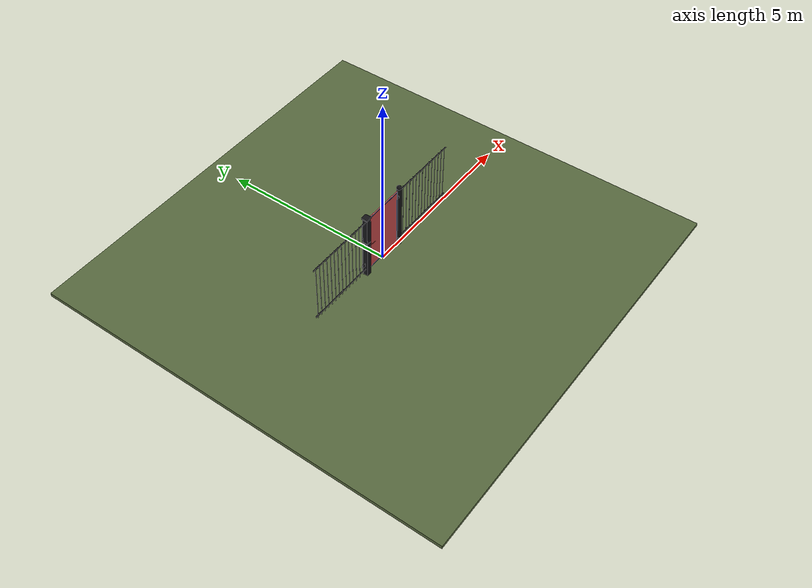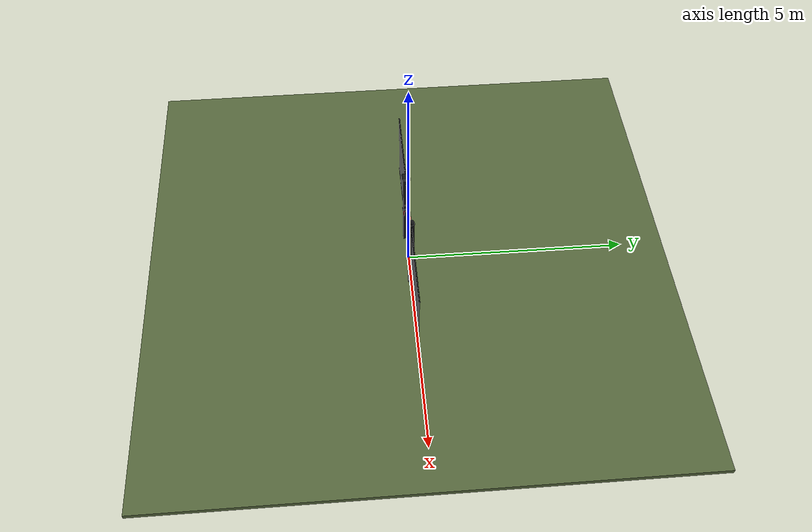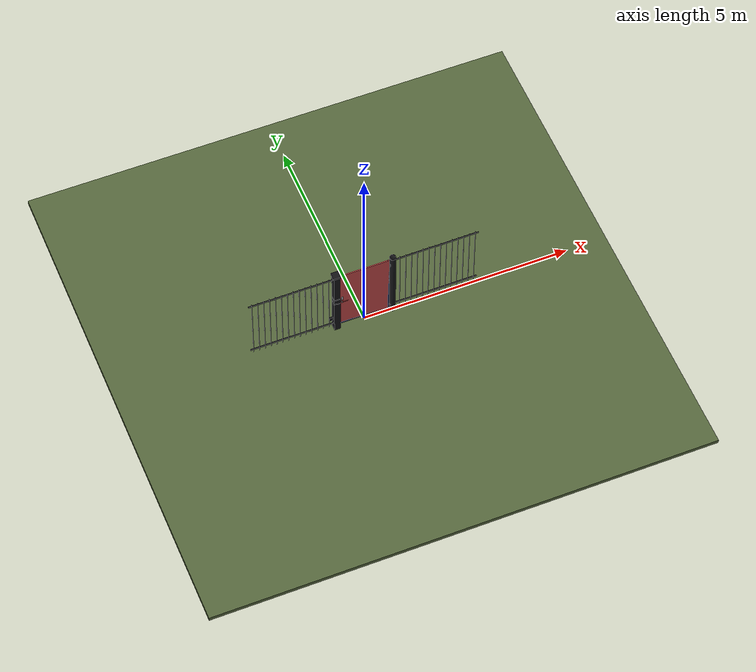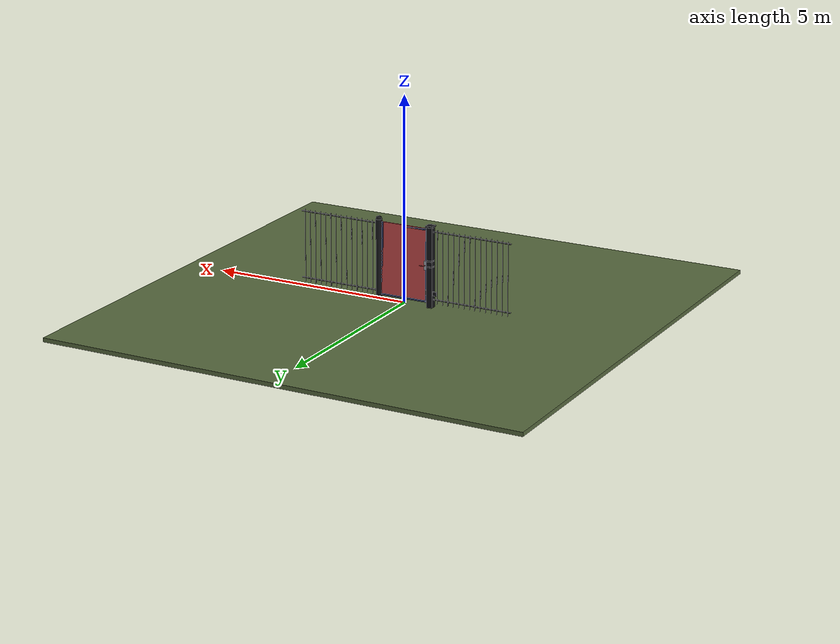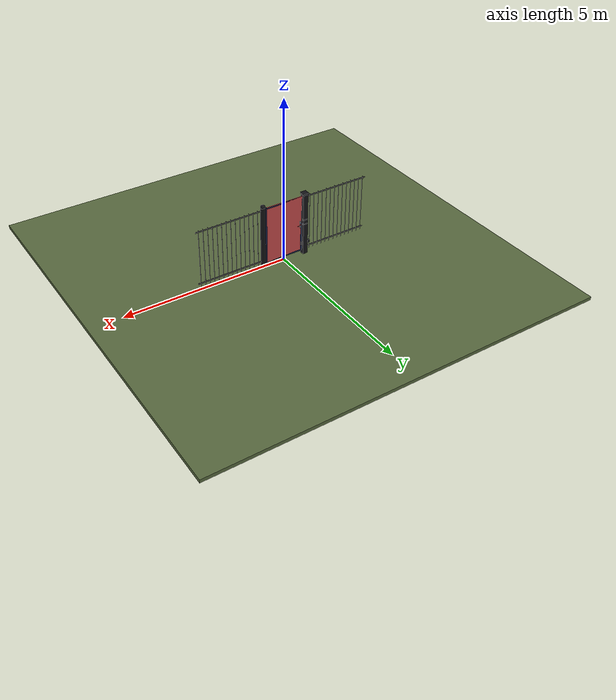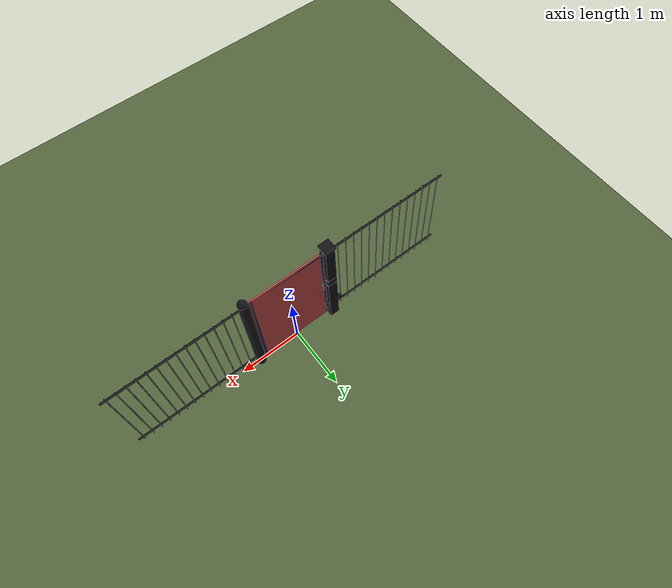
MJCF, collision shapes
<?xml version="1.0" ?>
<mujoco model="db0709_gate_swing_full">
  <compiler angle="radian" meshdir="../../hardware" texturedir="../../textures" autolimits="true" inertiafromgeom="false"/>
  <option timestep="0.002" integrator="implicitfast" cone="elliptic" impratio="10" noslip_iterations="3">
    <flag multiccd="enable"/>
  </option>
  <size memory="16M"/>
  <default>
    <geom condim="4" solref="0.005 1" solimp="0.95 0.99 0.001"/>
    <joint solreflimit="0.005 1" solimplimit="0.95 0.99 0.001"/>
    <tendon solreflimit="0.005 1"/>
    <equality solref="0.002 1"/>
  </default>
  <visual>
    <headlight ambient="0.4 0.4 0.4" diffuse="0.7 0.7 0.7" specular="0.2 0.2 0.2"/>
    <quality shadowsize="4096"/>
    <map znear="0.01" zfar="60"/>
  </visual>
  <asset>
    <mesh name="cyl_face_e9e5036966" file="cyl_face_e9e5036966.obj"/>
    <mesh name="lever_f913fc5b7b" file="lever_f913fc5b7b.obj"/>
    <mesh name="strap_hinge_118b895b75" file="strap_hinge_118b895b75.obj"/>
    <material name="mat_floor" rgba="0.35 0.42 0.25 1" specular="0.2" shininess="0.15" reflectance="0"/>
    <material name="mat_wall" rgba="0.78 0.76 0.7 1" specular="0.2" shininess="0.1" reflectance="0"/>
    <material name="mat_leaf" rgba="0.09 0.13 0.28 1" specular="0.23" shininess="0.31" reflectance="0.02"/>
    <material name="mat_hinge" rgba="0.65 0.66 0.68 1" specular="0.74" shininess="0.5" reflectance="0.36"/>
    <material name="mat_op_stainless" rgba="0.75 0.76 0.77 1" specular="0.8" shininess="0.65" reflectance="0.4"/>
    <material name="mat_trim" rgba="0.85 0.66 0.3 1" specular="0.8" shininess="0.75" reflectance="0.4"/>
    <material name="mat_bolt" rgba="0.75 0.76 0.77 1" specular="0.8" shininess="0.65" reflectance="0.4"/>
    <material name="mat_deadbolt" rgba="0.85 0.66 0.3 1" specular="0.8" shininess="0.75" reflectance="0.4"/>
    <material name="mat_frame" rgba="0.08 0.08 0.09 1" specular="0.56" shininess="0.25" reflectance="0.24"/>
    <texture name="skybox" type="skybox" builtin="gradient" rgb1="0.6 0.7 0.85" rgb2="0.9 0.92 0.95" width="256" height="256"/>
  </asset>
  <worldbody>
    <light name="sun" pos="1.5 -2.5 4" dir="-0.3 0.5 -0.8" directional="true" diffuse="0.8 0.8 0.8" specular="0.3 0.3 0.3" castshadow="true"/>
    <light name="fill" pos="-1.5 2.5 3" dir="0.3 -0.5 -0.7" directional="true" diffuse="0.35 0.35 0.4" castshadow="false"/>
    <camera name="robot_view" pos="0 -2.33125 1.56275" xyaxes="1 0 0 0 0.26963 0.962964" fovy="52"/>
    <camera name="far_view" pos="0 2.33125 1.56275" xyaxes="-1 0 0 0 -0.26963 0.962964" fovy="52"/>
    <camera name="iso" pos="-1.77175 -1.95825 1.93575" xyaxes="0.741536 -0.670913 0 0.242917 0.268487 0.932151" fovy="46"/>
    <camera name="detail_handle" pos="-0.258 -0.8675 1.28" xyaxes="0.97561 0.219512 0 -0.070934 0.315262 0.94635" fovy="38"/>
    <geom name="floor" type="box" size="6 6 0.05" pos="0 0 -0.05" material="mat_floor" group="0" contype="1" conaffinity="1" friction="0.8 0.005 0.0001" density="2400"/>
    <geom name="hinge_pintle_0" type="cylinder" size="0.008 0.02" pos="0.603 -0.05 0.224" material="mat_hinge" group="1" contype="0" conaffinity="0" density="7850"/>
    <geom name="hinge_pintle_1" type="cylinder" size="0.008 0.02" pos="0.603 -0.05 1.724" material="mat_hinge" group="1" contype="0" conaffinity="0" density="7850"/>
    <geom name="leaf_deadbolt_strike_b" type="box" size="0.0155 0.003 0.0005" pos="-0.6055 0 1.1215" quat="0.5 0.5 0.5 0.5" material="mat_deadbolt" group="1" contype="0" conaffinity="0" density="7800"/>
    <geom name="leaf_deadbolt_strike_l" type="box" size="0.003 0.0155 0.0005" pos="-0.6055 -0.0125 1.14" quat="0.5 0.5 0.5 0.5" material="mat_deadbolt" group="1" contype="0" conaffinity="0" density="7800"/>
    <geom name="leaf_deadbolt_strike_t" type="box" size="0.0155 0.003 0.0005" pos="-0.6055 0 1.1585" quat="0.5 0.5 0.5 0.5" material="mat_deadbolt" group="1" contype="0" conaffinity="0" density="7800"/>
    <geom name="leaf_deadbolt_strike_r" type="box" size="0.003 0.0155 0.0005" pos="-0.6055 0.0125 1.14" quat="0.5 0.5 0.5 0.5" material="mat_deadbolt" group="1" contype="0" conaffinity="0" density="7800"/>
    <geom name="post_hinge" type="cylinder" size="0.075 0.975" pos="0.681 0 0.975" material="mat_frame" group="0" contype="1" conaffinity="1" friction="0.6 0.005 0.0001" density="800"/>
    <geom name="post_hinge_cap" type="sphere" size="0.075" pos="0.681 0 1.95" material="mat_frame" group="1" contype="0" conaffinity="0" density="800"/>
    <geom name="post_1000_wall_n" type="box" size="0.075 0.03425 0.015" pos="-0.681 0.04075 1" material="mat_frame" group="0" contype="1" conaffinity="1" friction="0.6 0.005 0.0001" density="800"/>
    <geom name="post_1000_wall_p" type="box" size="0.075 0.008 0.015" pos="-0.681 -0.0145 1" material="mat_frame" group="0" contype="1" conaffinity="1" friction="0.6 0.005 0.0001" density="800"/>
    <geom name="post_1000_ramp" type="box" size="0.075 0.037018 0.015" pos="-0.686945 -0.043555 1" quat="0.994802 0 0 -0.101832" material="mat_frame" group="0" contype="1" conaffinity="1" friction="0.12 0.005 0.0001" density="800"/>
    <geom name="post_1000_back" type="box" size="0.066 0.0065 0.015" pos="-0.69 0 1" material="mat_frame" group="0" contype="1" conaffinity="1" friction="0.6 0.005 0.0001" density="800"/>
    <geom name="post_1140_wall_n" type="box" size="0.075 0.03275 0.0155" pos="-0.681 0.04225 1.14" material="mat_frame" group="0" contype="1" conaffinity="1" friction="0.6 0.005 0.0001" density="800"/>
    <geom name="post_1140_wall_p" type="box" size="0.075 0.03275 0.0155" pos="-0.681 -0.04225 1.14" material="mat_frame" group="0" contype="1" conaffinity="1" friction="0.6 0.005 0.0001" density="800"/>
    <geom name="post_1140_back" type="box" size="0.0603 0.0095 0.0155" pos="-0.6957 0 1.14" material="mat_frame" group="0" contype="1" conaffinity="1" friction="0.6 0.005 0.0001" density="800"/>
    <geom name="post_latch_0" type="box" size="0.075 0.075 0.4925" pos="-0.681 0 0.4925" material="mat_frame" group="0" contype="1" conaffinity="1" friction="0.6 0.005 0.0001" density="800"/>
    <geom name="post_latch_1" type="box" size="0.075 0.075 0.05475" pos="-0.681 0 1.06975" material="mat_frame" group="0" contype="1" conaffinity="1" friction="0.6 0.005 0.0001" density="800"/>
    <geom name="post_latch_2" type="box" size="0.075 0.075 0.39725" pos="-0.681 0 1.55275" material="mat_frame" group="0" contype="1" conaffinity="1" friction="0.6 0.005 0.0001" density="800"/>
    <geom name="post_latch_cap" type="box" size="0.09 0.09 0.02" pos="-0.681 0 1.97" material="mat_frame" group="1" contype="0" conaffinity="0" density="800"/>
    <geom name="gate_stop" type="box" size="0.02 0.012 0.06" pos="-0.586 0.0245 0.35" material="mat_frame" group="0" contype="1" conaffinity="1" friction="0.6 0.005 0.0001" density="800"/>
    <geom name="fence_bar_l_0" type="cylinder" size="0.008 0.9" pos="-0.856 0 1" material="mat_frame" group="0" contype="1" conaffinity="1" friction="0.6 0.005 0.0001" density="7850"/>
    <geom name="fence_bar_l_1" type="cylinder" size="0.008 0.9" pos="-0.996 0 1" material="mat_frame" group="0" contype="1" conaffinity="1" friction="0.6 0.005 0.0001" density="7850"/>
    <geom name="fence_bar_l_2" type="cylinder" size="0.008 0.9" pos="-1.136 0 1" material="mat_frame" group="0" contype="1" conaffinity="1" friction="0.6 0.005 0.0001" density="7850"/>
    <geom name="fence_bar_l_3" type="cylinder" size="0.008 0.9" pos="-1.276 0 1" material="mat_frame" group="0" contype="1" conaffinity="1" friction="0.6 0.005 0.0001" density="7850"/>
    <geom name="fence_bar_l_4" type="cylinder" size="0.008 0.9" pos="-1.416 0 1" material="mat_frame" group="0" contype="1" conaffinity="1" friction="0.6 0.005 0.0001" density="7850"/>
    <geom name="fence_bar_l_5" type="cylinder" size="0.008 0.9" pos="-1.556 0 1" material="mat_frame" group="0" contype="1" conaffinity="1" friction="0.6 0.005 0.0001" density="7850"/>
    <geom name="fence_bar_l_6" type="cylinder" size="0.008 0.9" pos="-1.696 0 1" material="mat_frame" group="0" contype="1" conaffinity="1" friction="0.6 0.005 0.0001" density="7850"/>
    <geom name="fence_bar_l_7" type="cylinder" size="0.008 0.9" pos="-1.836 0 1" material="mat_frame" group="0" contype="1" conaffinity="1" friction="0.6 0.005 0.0001" density="7850"/>
    <geom name="fence_bar_l_8" type="cylinder" size="0.008 0.9" pos="-1.976 0 1" material="mat_frame" group="0" contype="1" conaffinity="1" friction="0.6 0.005 0.0001" density="7850"/>
    <geom name="fence_bar_l_9" type="cylinder" size="0.008 0.9" pos="-2.116 0 1" material="mat_frame" group="0" contype="1" conaffinity="1" friction="0.6 0.005 0.0001" density="7850"/>
    <geom name="fence_bar_l_10" type="cylinder" size="0.008 0.9" pos="-2.256 0 1" material="mat_frame" group="0" contype="1" conaffinity="1" friction="0.6 0.005 0.0001" density="7850"/>
    <geom name="fence_bar_l_11" type="cylinder" size="0.008 0.9" pos="-2.396 0 1" material="mat_frame" group="0" contype="1" conaffinity="1" friction="0.6 0.005 0.0001" density="7850"/>
    <geom name="fence_bar_l_12" type="cylinder" size="0.008 0.9" pos="-2.536 0 1" material="mat_frame" group="0" contype="1" conaffinity="1" friction="0.6 0.005 0.0001" density="7850"/>
    <geom name="fence_bar_l_13" type="cylinder" size="0.008 0.9" pos="-2.676 0 1" material="mat_frame" group="0" contype="1" conaffinity="1" friction="0.6 0.005 0.0001" density="7850"/>
    <geom name="fence_rail_l" type="box" size="1 0.012 0.012" pos="-1.756 0 1.85" material="mat_frame" group="0" contype="1" conaffinity="1" friction="0.6 0.005 0.0001" density="7850"/>
    <geom name="fence_rail_b_l" type="box" size="1 0.012 0.012" pos="-1.756 0 0.2" material="mat_frame" group="0" contype="1" conaffinity="1" friction="0.6 0.005 0.0001" density="7850"/>
    <geom name="fence_bar_r_0" type="cylinder" size="0.008 0.9" pos="0.856 0 1" material="mat_frame" group="0" contype="1" conaffinity="1" friction="0.6 0.005 0.0001" density="7850"/>
    <geom name="fence_bar_r_1" type="cylinder" size="0.008 0.9" pos="0.996 0 1" material="mat_frame" group="0" contype="1" conaffinity="1" friction="0.6 0.005 0.0001" density="7850"/>
    <geom name="fence_bar_r_2" type="cylinder" size="0.008 0.9" pos="1.136 0 1" material="mat_frame" group="0" contype="1" conaffinity="1" friction="0.6 0.005 0.0001" density="7850"/>
    <geom name="fence_bar_r_3" type="cylinder" size="0.008 0.9" pos="1.276 0 1" material="mat_frame" group="0" contype="1" conaffinity="1" friction="0.6 0.005 0.0001" density="7850"/>
    <geom name="fence_bar_r_4" type="cylinder" size="0.008 0.9" pos="1.416 0 1" material="mat_frame" group="0" contype="1" conaffinity="1" friction="0.6 0.005 0.0001" density="7850"/>
    <geom name="fence_bar_r_5" type="cylinder" size="0.008 0.9" pos="1.556 0 1" material="mat_frame" group="0" contype="1" conaffinity="1" friction="0.6 0.005 0.0001" density="7850"/>
    <geom name="fence_bar_r_6" type="cylinder" size="0.008 0.9" pos="1.696 0 1" material="mat_frame" group="0" contype="1" conaffinity="1" friction="0.6 0.005 0.0001" density="7850"/>
    <geom name="fence_bar_r_7" type="cylinder" size="0.008 0.9" pos="1.836 0 1" material="mat_frame" group="0" contype="1" conaffinity="1" friction="0.6 0.005 0.0001" density="7850"/>
    <geom name="fence_bar_r_8" type="cylinder" size="0.008 0.9" pos="1.976 0 1" material="mat_frame" group="0" contype="1" conaffinity="1" friction="0.6 0.005 0.0001" density="7850"/>
    <geom name="fence_bar_r_9" type="cylinder" size="0.008 0.9" pos="2.116 0 1" material="mat_frame" group="0" contype="1" conaffinity="1" friction="0.6 0.005 0.0001" density="7850"/>
    <geom name="fence_bar_r_10" type="cylinder" size="0.008 0.9" pos="2.256 0 1" material="mat_frame" group="0" contype="1" conaffinity="1" friction="0.6 0.005 0.0001" density="7850"/>
    <geom name="fence_bar_r_11" type="cylinder" size="0.008 0.9" pos="2.396 0 1" material="mat_frame" group="0" contype="1" conaffinity="1" friction="0.6 0.005 0.0001" density="7850"/>
    <geom name="fence_bar_r_12" type="cylinder" size="0.008 0.9" pos="2.536 0 1" material="mat_frame" group="0" contype="1" conaffinity="1" friction="0.6 0.005 0.0001" density="7850"/>
    <geom name="fence_bar_r_13" type="cylinder" size="0.008 0.9" pos="2.676 0 1" material="mat_frame" group="0" contype="1" conaffinity="1" friction="0.6 0.005 0.0001" density="7850"/>
    <geom name="fence_rail_r" type="box" size="1 0.012 0.012" pos="1.756 0 1.85" material="mat_frame" group="0" contype="1" conaffinity="1" friction="0.6 0.005 0.0001" density="7850"/>
    <geom name="fence_rail_b_r" type="box" size="1 0.012 0.012" pos="1.756 0 0.2" material="mat_frame" group="0" contype="1" conaffinity="1" friction="0.6 0.005 0.0001" density="7850"/>
    <geom name="gate_stop_strap_0" type="box" size="0.1215 0.01505 0.048" pos="-0.727 0.01905 0.35" material="mat_frame" group="1" contype="0" conaffinity="0" density="7850"/>
    <site name="approach_point" pos="0 -1.5 0" quat="1 0 0 0" size="0.05" rgba="0.2 0.9 0.2 0.5" group="4"/>
    <site name="goal_point" pos="0 1.5 0" quat="1 0 0 0" size="0.05" rgba="0.2 0.9 0.2 0.5" group="4"/>
    <site name="door_plane_center" pos="0 0 0.91" quat="1 0 0 0" size="0.02" rgba="0.2 0.9 0.2 0.5" group="4"/>
    <body name="leaf" pos="0.606 0 0">
      <inertial pos="-0.579273 -0.0013 1.000247" mass="67.524702" quat="0.50067 0.498913 -0.501093 0.499321" diaginertia="8.286117885 19.623155997 27.899423099"/>
      <joint name="leaf_hinge" type="hinge" axis="0 0 1" pos="-0.003 -0.05 0" limited="true" range="0 1.570796" damping="8.674086" frictionloss="34.779755" stiffness="5" springref="-9.042736" armature="0.02"/>
      <geom name="leaf_slab_col" type="box" size="0.6 0.0125 0.9" pos="-0.603 0 1" material="mat_leaf" group="3" contype="1" conaffinity="1" rgba="0.8 0.3 0.3 0.25" friction="0.45 0.005 0.0001" density="1"/>
      <geom name="leaf_rail_b" type="box" size="0.6 0.0125 0.0225" pos="-0.603 0 0.1225" material="mat_leaf" group="1" contype="0" conaffinity="0" density="1"/>
      <geom name="leaf_rail_t" type="box" size="0.6 0.0125 0.0225" pos="-0.603 0 1.8775" material="mat_leaf" group="1" contype="0" conaffinity="0" density="1"/>
      <geom name="leaf_stile_h" type="box" size="0.0225 0.0125 0.9" pos="-0.0255 0 1" material="mat_leaf" group="1" contype="0" conaffinity="0" density="1"/>
      <geom name="leaf_stile_l" type="box" size="0.0225 0.0125 0.9" pos="-1.1805 0 1" material="mat_leaf" group="1" contype="0" conaffinity="0" density="1"/>
      <geom name="leaf_bar_0" type="cylinder" size="0.0095 0.855" pos="-0.117375 0 1" material="mat_leaf" group="1" contype="0" conaffinity="0" density="1"/>
      <geom name="leaf_bar_1" type="cylinder" size="0.0095 0.855" pos="-0.256125 0 1" material="mat_leaf" group="1" contype="0" conaffinity="0" density="1"/>
      <geom name="leaf_bar_2" type="cylinder" size="0.0095 0.855" pos="-0.394875 0 1" material="mat_leaf" group="1" contype="0" conaffinity="0" density="1"/>
      <geom name="leaf_bar_3" type="cylinder" size="0.0095 0.855" pos="-0.533625 0 1" material="mat_leaf" group="1" contype="0" conaffinity="0" density="1"/>
      <geom name="leaf_bar_4" type="cylinder" size="0.0095 0.855" pos="-0.672375 0 1" material="mat_leaf" group="1" contype="0" conaffinity="0" density="1"/>
      <geom name="leaf_bar_5" type="cylinder" size="0.0095 0.855" pos="-0.811125 0 1" material="mat_leaf" group="1" contype="0" conaffinity="0" density="1"/>
      <geom name="leaf_bar_6" type="cylinder" size="0.0095 0.855" pos="-0.949875 0 1" material="mat_leaf" group="1" contype="0" conaffinity="0" density="1"/>
      <geom name="leaf_bar_7" type="cylinder" size="0.0095 0.855" pos="-1.088625 0 1" material="mat_leaf" group="1" contype="0" conaffinity="0" density="1"/>
      <geom name="hinge_strap_0" type="mesh" mesh="strap_hinge_118b895b75" pos="-0.003 -0.0155 0.25" quat="0 0 0 1" material="mat_hinge" group="1" contype="0" conaffinity="0" density="7850"/>
      <geom name="hinge_strap_eye_0" type="cylinder" size="0.011 0.012" pos="-0.003 -0.05 0.25" material="mat_hinge" group="1" contype="0" conaffinity="0" density="7850"/>
      <geom name="hinge_strap_neck_0" type="box" size="0.012 0.02125 0.006" pos="-0.003 -0.03275 0.25" material="mat_hinge" group="1" contype="0" conaffinity="0" density="7850"/>
      <geom name="hinge_strap_1" type="mesh" mesh="strap_hinge_118b895b75" pos="-0.003 -0.0155 1.75" quat="0 0 0 1" material="mat_hinge" group="1" contype="0" conaffinity="0" density="7850"/>
      <geom name="hinge_strap_eye_1" type="cylinder" size="0.011 0.012" pos="-0.003 -0.05 1.75" material="mat_hinge" group="1" contype="0" conaffinity="0" density="7850"/>
      <geom name="hinge_strap_neck_1" type="box" size="0.012 0.02125 0.006" pos="-0.003 -0.03275 1.75" material="mat_hinge" group="1" contype="0" conaffinity="0" density="7850"/>
      <geom name="leaf_handle_escutcheon_n" type="box" size="0.02 0.0015 0.11" pos="-1.148 -0.014 1" material="mat_op_stainless" group="1" contype="0" conaffinity="0" density="3000"/>
      <geom name="leaf_handle_escutcheon_p" type="box" size="0.02 0.0015 0.11" pos="-1.148 0.014 1" material="mat_op_stainless" group="1" contype="0" conaffinity="0" density="3000"/>
      <geom name="leaf_latch_bolt_faceplate" type="box" size="0.0006 0.0105 0.025" pos="-1.2024 0 1" material="mat_bolt" group="1" contype="0" conaffinity="0" density="8500"/>
      <geom name="leaf_deadbolt_faceplate" type="box" size="0.0006 0.0105 0.0245" pos="-1.2024 0 1.14" material="mat_deadbolt" group="1" contype="0" conaffinity="0" density="8500"/>
      <geom name="leaf_deadbolt_cylinder_face" type="mesh" mesh="cyl_face_e9e5036966" pos="-1.138 -0.0125 1.14" quat="0 0 -0.707107 0.707107" material="mat_deadbolt" group="1" contype="0" conaffinity="0" density="7100"/>
      <site name="leaf_edge_mid" pos="-1.203 0 0.9" quat="1 0 0 0" size="0.02" rgba="0.2 0.9 0.2 0.5" group="4"/>
      <body name="leaf_handle" pos="-1.148 0 1">
        <inertial pos="0.039865 0 0" mass="0.755789" quat="0.707107 0 0 -0.707107" diaginertia="0.001518786 0.002606793 0.004086426"/>
        <joint name="leaf_handle_hinge" type="hinge" axis="0 1 0" limited="true" range="0 0.65" damping="0.225565" frictionloss="0.051863" stiffness="1" springref="-0.503022" armature="0.01"/>
        <geom name="leaf_handle_spindle" type="cylinder" size="0.006 0.0245" pos="0 0 0" quat="0.707107 -0.707107 0 0" material="mat_op_stainless" group="1" contype="0" conaffinity="0" density="7850"/>
        <geom name="leaf_handle_lever_n" type="mesh" mesh="lever_f913fc5b7b" pos="0 -0.0125 0" quat="0 0 -0.707107 0.707107" material="mat_op_stainless" group="1" contype="0" conaffinity="0" density="3000"/>
        <geom name="leaf_handle_lever_col_n" type="capsule" size="0.0095 0.0555" pos="0.065 -0.0675 0" quat="0.707107 0 0.707107 0" material="mat_op_stainless" group="3" contype="1" conaffinity="1" rgba="0.8 0.3 0.3 0.25" friction="0.7 0.01 0.0001" density="3000"/>
        <geom name="leaf_handle_hub_col_n" type="cylinder" size="0.012 0.022" pos="0 -0.0425 0" quat="0.707107 -0.707107 0 0" material="mat_op_stainless" group="3" contype="1" conaffinity="1" rgba="0.8 0.3 0.3 0.25" friction="0.6 0.005 0.0001" density="3000"/>
        <geom name="leaf_handle_lever_p" type="mesh" mesh="lever_f913fc5b7b" pos="0 0.0125 0" quat="0 0 0.707107 0.707107" material="mat_op_stainless" group="1" contype="0" conaffinity="0" density="3000"/>
        <geom name="leaf_handle_lever_col_p" type="capsule" size="0.0095 0.0555" pos="0.065 0.0675 0" quat="0.707107 0 0.707107 0" material="mat_op_stainless" group="3" contype="1" conaffinity="1" rgba="0.8 0.3 0.3 0.25" friction="0.7 0.01 0.0001" density="3000"/>
        <geom name="leaf_handle_hub_col_p" type="cylinder" size="0.012 0.022" pos="0 0.0425 0" quat="0.707107 -0.707107 0 0" material="mat_op_stainless" group="3" contype="1" conaffinity="1" rgba="0.8 0.3 0.3 0.25" friction="0.6 0.005 0.0001" density="3000"/>
        <site name="leaf_handle_grip_n" pos="0.104 -0.0675 0" quat="1 0 0 0" size="0.012" rgba="0.2 0.9 0.2 0.5" group="4"/>
        <site name="leaf_handle_grip_p" pos="0.104 0.0675 0" quat="1 0 0 0" size="0.012" rgba="0.2 0.9 0.2 0.5" group="4"/>
      </body>
      <body name="leaf_latch_bolt" pos="-1.203 0 1">
        <inertial pos="0.008 0 0" mass="0.027149" quat="0 0 -0.707107 0.707107" diaginertia="0.000000328 0.000003943 0.000003943"/>
        <joint name="leaf_latch_bolt_slide" type="slide" axis="1 0 0" limited="true" range="0 0.014" damping="2" frictionloss="0.3" stiffness="400" springref="-0.01" armature="0.1"/>
        <geom name="leaf_latch_bolt_capsule" type="capsule" size="0.005 0.017" pos="0.008 0 0" quat="0.707107 0 -0.707107 0" material="mat_bolt" group="0" contype="1" conaffinity="1" friction="0.2 0.005 0.0001" density="8500"/>
      </body>
      <body name="leaf_deadbolt" pos="-1.203 0 1.14">
        <inertial pos="0.0277 0 0" mass="0.18836" quat="0 0 0.707107 0.707107" diaginertia="0.000013829 0.000052194 0.000057986"/>
        <geom name="leaf_deadbolt_box" type="box" size="0.0277 0.008 0.0125" pos="0.0277 0 0" material="mat_deadbolt" group="0" contype="1" conaffinity="1" friction="0.3 0.005 0.0001" density="8500"/>
      </body>
    </body>
  </worldbody>
  <tendon>
    <fixed name="leaf_latch_bolt_coupling" limited="true" range="0 10">
      <joint joint="leaf_latch_bolt_slide" coef="1"/>
      <joint joint="leaf_handle_hinge" coef="-0.022951"/>
    </fixed>
  </tendon>
  <sensor>
    <jointpos name="leaf_hinge_pos" joint="leaf_hinge"/>
    <jointvel name="leaf_hinge_vel" joint="leaf_hinge"/>
    <jointpos name="leaf_handle_hinge_pos" joint="leaf_handle_hinge"/>
    <jointvel name="leaf_handle_hinge_vel" joint="leaf_handle_hinge"/>
    <jointpos name="leaf_latch_bolt_slide_pos" joint="leaf_latch_bolt_slide"/>
    <jointvel name="leaf_latch_bolt_slide_vel" joint="leaf_latch_bolt_slide"/>
  </sensor>
</mujoco>
